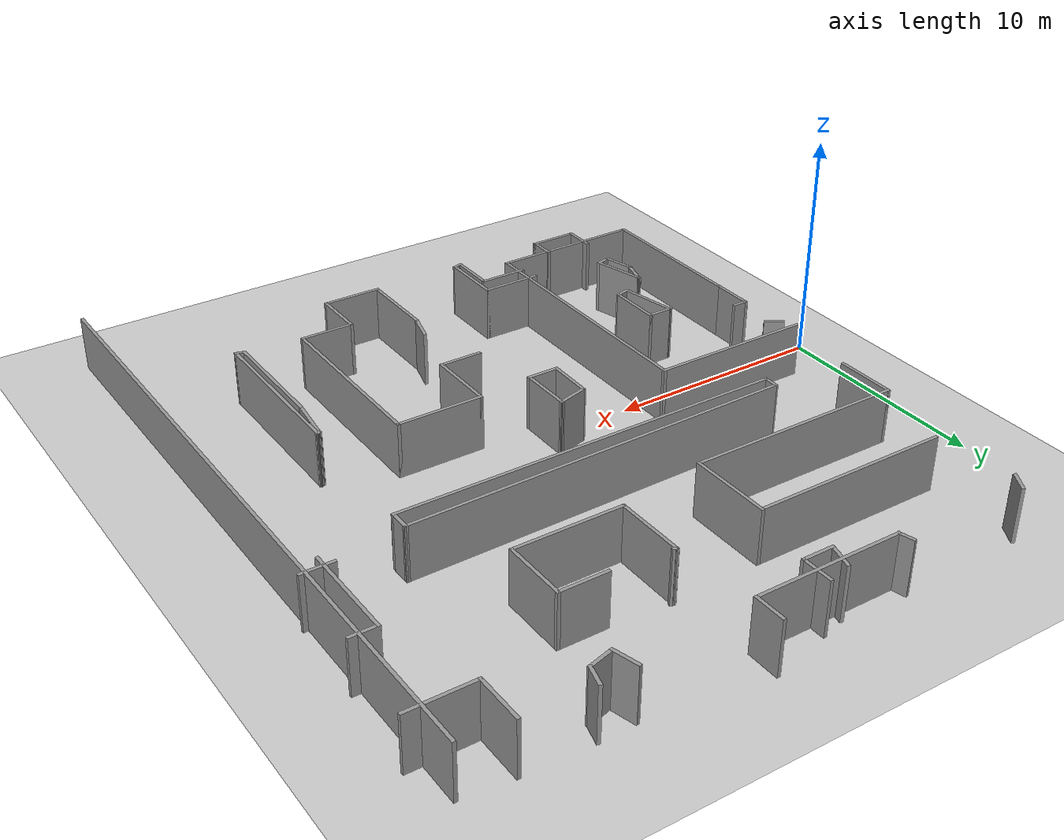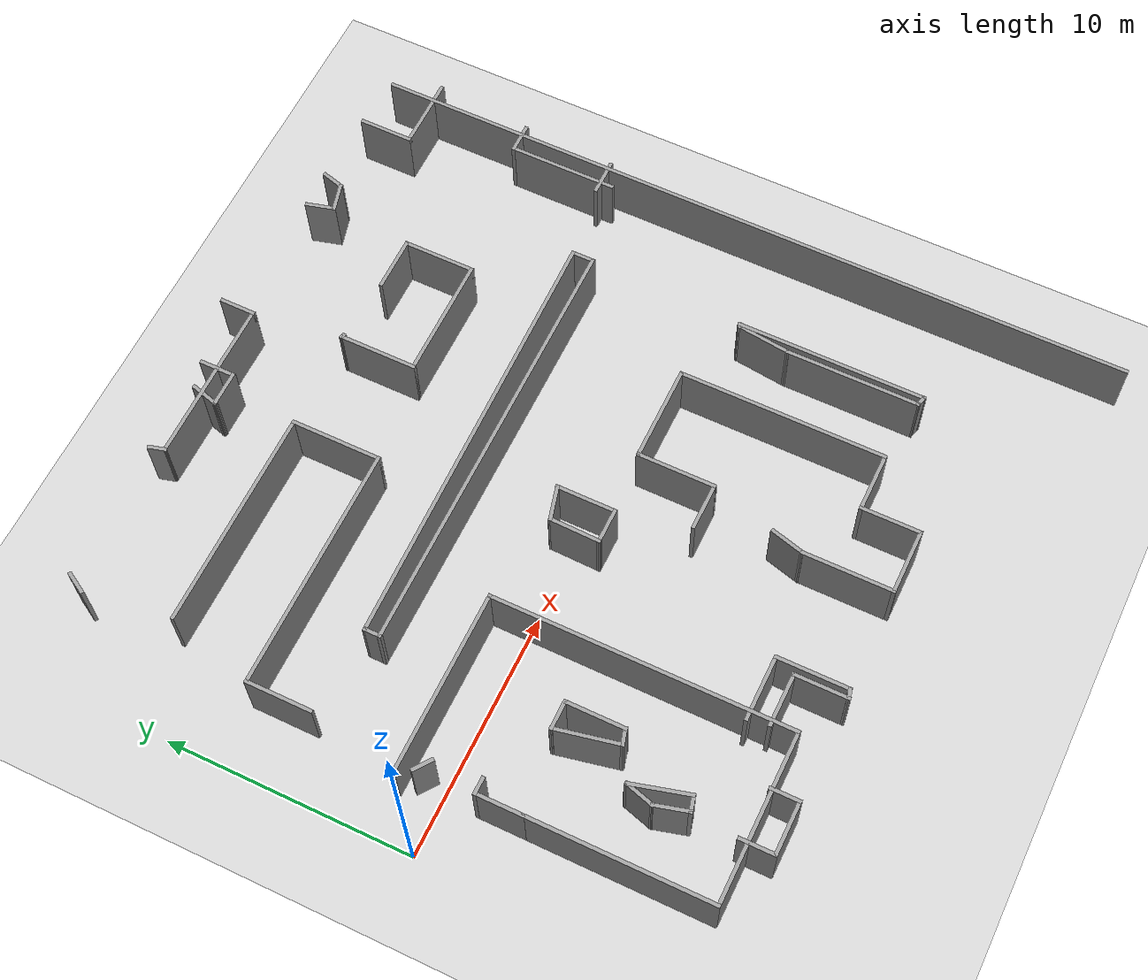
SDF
<sdf version="1.6">
 <world name="default">
  <model name="ground_plane">
   <static>1</static>
   <link name="link">
    <collision name="collision">
     <geometry><plane><normal>0 0 1</normal><size>100 100</size></plane></geometry>
     <surface><friction><ode><mu>100</mu><mu2>50</mu2></ode></friction></surface>
    </collision>
    <visual name="visual">
     <cast_shadows>0</cast_shadows>
     <geometry><plane><normal>0 0 1</normal><size>100 100</size></plane></geometry>
     <material>
      <script><uri>file://media/materials/scripts/gazebo.material</uri><name>Gazebo/Grey</name></script>
     </material>
    </visual>
   </link>
  </model>
  <model name="big_bad_building">
   <pose>1.49466 0.02184 0 0 -0 0</pose>
   <link name="Wall_108">
    <collision name="Wall_108_Collision">
     <geometry><box><size>1.5 0.15 2.5</size></box></geometry>
     <pose>0 0 1.25 0 -0 0</pose>
    </collision>
    <visual name="Wall_108_Visual">
     <pose>0 0 1.25 0 -0 0</pose>
     <geometry><box><size>1.5 0.15 2.5</size></box></geometry>
     <material>
      <script><uri>file://media/materials/scripts/gazebo.material</uri><name>Gazebo/Grey</name></script>
      <ambient>1 1 1 1</ambient>
     </material>
     <meta><layer>0</layer></meta>
    </visual>
    <pose>3.27589 -10.9603 0 0 -0 -1.5708</pose>
   </link>
   <link name="Wall_109">
    <collision name="Wall_109_Collision">
     <geometry><box><size>2.25 0.15 2.5</size></box></geometry>
     <pose>0 0 1.25 0 -0 0</pose>
    </collision>
    <visual name="Wall_109_Visual">
     <pose>0 0 1.25 0 -0 0</pose>
     <geometry><box><size>2.25 0.15 2.5</size></box></geometry>
     <material>
      <script><uri>file://media/materials/scripts/gazebo.material</uri><name>Gazebo/Grey</name></script>
      <ambient>1 1 1 1</ambient>
     </material>
     <meta><layer>0</layer></meta>
    </visual>
    <pose>4.32589 -11.6353 0 0 -0 0</pose>
   </link>
   <link name="Wall_110">
    <collision name="Wall_110_Collision">
     <geometry><box><size>1.25 0.15 2.5</size></box></geometry>
     <pose>0 0 1.25 0 -0 0</pose>
    </collision>
    <visual name="Wall_110_Visual">
     <pose>0 0 1.25 0 -0 0</pose>
     <geometry><box><size>1.25 0.15 2.5</size></box></geometry>
     <material>
      <script><uri>file://media/materials/scripts/gazebo.material</uri><name>Gazebo/Grey</name></script>
      <ambient>1 1 1 1</ambient>
     </material>
     <meta><layer>0</layer></meta>
    </visual>
    <pose>5.37589 -11.0853 0 0 -0 1.5708</pose>
   </link>
   <link name="Wall_112">
    <collision name="Wall_112_Collision">
     <geometry><box><size>2 0.15 2.5</size></box></geometry>
     <pose>0 0 1.25 0 -0 0</pose>
    </collision>
    <visual name="Wall_112_Visual">
     <pose>0 0 1.25 0 -0 0</pose>
     <geometry><box><size>2 0.15 2.5</size></box></geometry>
     <material>
      <script><uri>file://media/materials/scripts/gazebo.material</uri><name>Gazebo/Grey</name></script>
      <ambient>1 1 1 1</ambient>
     </material>
     <meta><layer>0</layer></meta>
    </visual>
    <pose>14.2899 -4.00343 0 0 -0 0</pose>
   </link>
   <link name="Wall_113">
    <collision name="Wall_113_Collision">
     <geometry><box><size>3.25 0.15 2.5</size></box></geometry>
     <pose>0 0 1.25 0 -0 0</pose>
    </collision>
    <visual name="Wall_113_Visual">
     <pose>0 0 1.25 0 -0 0</pose>
     <geometry><box><size>3.25 0.15 2.5</size></box></geometry>
     <material>
      <script><uri>file://media/materials/scripts/gazebo.material</uri><name>Gazebo/Grey</name></script>
      <ambient>1 1 1 1</ambient>
     </material>
     <meta><layer>0</layer></meta>
    </visual>
    <pose>15.2149 -2.45343 0 0 -0 1.5708</pose>
   </link>
   <link name="Wall_114">
    <collision name="Wall_114_Collision">
     <geometry><box><size>4 0.15 2.5</size></box></geometry>
     <pose>0 0 1.25 0 -0 0</pose>
    </collision>
    <visual name="Wall_114_Visual">
     <pose>0 0 1.25 0 -0 0</pose>
     <geometry><box><size>4 0.15 2.5</size></box></geometry>
     <material>
      <script><uri>file://media/materials/scripts/gazebo.material</uri><name>Gazebo/Grey</name></script>
      <ambient>1 1 1 1</ambient>
     </material>
     <meta><layer>0</layer></meta>
    </visual>
    <pose>17.1399 -0.903431 0 0 -0 0</pose>
   </link>
   <link name="Wall_115">
    <collision name="Wall_115_Collision">
     <geometry><box><size>8.5 0.15 2.5</size></box></geometry>
     <pose>0 0 1.25 0 -0 0</pose>
    </collision>
    <visual name="Wall_115_Visual">
     <pose>0 0 1.25 0 -0 0</pose>
     <geometry><box><size>8.5 0.15 2.5</size></box></geometry>
     <material>
      <script><uri>file://media/materials/scripts/gazebo.material</uri><name>Gazebo/Grey</name></script>
      <ambient>1 1 1 1</ambient>
     </material>
     <meta><layer>0</layer></meta>
    </visual>
    <pose>19.0649 -5.07843 0 0 -0 -1.5708</pose>
   </link>
   <link name="Wall_116">
    <collision name="Wall_116_Collision">
     <geometry><box><size>2.5 0.15 2.5</size></box></geometry>
     <pose>0 0 1.25 0 -0 0</pose>
    </collision>
    <visual name="Wall_116_Visual">
     <pose>0 0 1.25 0 -0 0</pose>
     <geometry><box><size>2.5 0.15 2.5</size></box></geometry>
     <material>
      <script><uri>file://media/materials/scripts/gazebo.material</uri><name>Gazebo/Grey</name></script>
      <ambient>1 1 1 1</ambient>
     </material>
     <meta><layer>0</layer></meta>
    </visual>
    <pose>17.8899 -9.25343 0 0 -0 3.14159</pose>
   </link>
   <link name="Wall_117">
    <collision name="Wall_117_Collision">
     <geometry><box><size>2.5 0.15 2.5</size></box></geometry>
     <pose>0 0 1.25 0 -0 0</pose>
    </collision>
    <visual name="Wall_117_Visual">
     <pose>0 0 1.25 0 -0 0</pose>
     <geometry><box><size>2.5 0.15 2.5</size></box></geometry>
     <material>
      <script><uri>file://media/materials/scripts/gazebo.material</uri><name>Gazebo/Grey</name></script>
      <ambient>1 1 1 1</ambient>
     </material>
     <meta><layer>0</layer></meta>
    </visual>
    <pose>16.7149 -10.4284 0 0 -0 -1.5708</pose>
   </link>
   <link name="Wall_118">
    <collision name="Wall_118_Collision">
     <geometry><box><size>2.75 0.15 2.5</size></box></geometry>
     <pose>0 0 1.25 0 -0 0</pose>
    </collision>
    <visual name="Wall_118_Visual">
     <pose>0 0 1.25 0 -0 0</pose>
     <geometry><box><size>2.75 0.15 2.5</size></box></geometry>
     <material>
      <script><uri>file://media/materials/scripts/gazebo.material</uri><name>Gazebo/Grey</name></script>
      <ambient>1 1 1 1</ambient>
     </material>
     <meta><layer>0</layer></meta>
    </visual>
    <pose>15.4149 -11.6034 0 0 -0 3.14159</pose>
   </link>
   <link name="Wall_119">
    <collision name="Wall_119_Collision">
     <geometry><box><size>3.75 0.15 2.5</size></box></geometry>
     <pose>0 0 1.25 0 -0 0</pose>
    </collision>
    <visual name="Wall_119_Visual">
     <pose>0 0 1.25 0 -0 0</pose>
     <geometry><box><size>3.75 0.15 2.5</size></box></geometry>
     <material>
      <script><uri>file://media/materials/scripts/gazebo.material</uri><name>Gazebo/Grey</name></script>
      <ambient>1 1 1 1</ambient>
     </material>
     <meta><layer>0</layer></meta>
    </visual>
    <pose>14.1149 -9.80343 0 0 -0 1.5708</pose>
   </link>
   <link name="Wall_120">
    <collision name="Wall_120_Collision">
     <geometry><box><size>1.5 0.15 2.5</size></box></geometry>
     <pose>0 0 1.25 0 -0 0</pose>
    </collision>
    <visual name="Wall_120_Visual">
     <pose>0 0 1.25 0 -0 0</pose>
     <geometry><box><size>1.5 0.15 2.5</size></box></geometry>
     <material>
      <script><uri>file://media/materials/scripts/gazebo.material</uri><name>Gazebo/Grey</name></script>
      <ambient>1 1 1 1</ambient>
     </material>
     <meta><layer>0</layer></meta>
    </visual>
    <pose>14.2896 -7.35143 0 0 -0 1.309</pose>
   </link>
   <link name="Wall_122">
    <collision name="Wall_122_Collision">
     <geometry><box><size>1.5 0.15 2.5</size></box></geometry>
     <pose>0 0 1.25 0 -0 0</pose>
    </collision>
    <visual name="Wall_122_Visual">
     <pose>0 0 1.25 0 -0 0</pose>
     <geometry><box><size>1.5 0.15 2.5</size></box></geometry>
     <material>
      <script><uri>file://media/materials/scripts/gazebo.material</uri><name>Gazebo/Grey</name></script>
      <ambient>1 1 1 1</ambient>
     </material>
     <meta><layer>0</layer></meta>
    </visual>
    <pose>12.0499 1.05715 0 0 -0 0.261799</pose>
   </link>
   <link name="Wall_123">
    <collision name="Wall_123_Collision">
     <geometry><box><size>2.5 0.15 2.5</size></box></geometry>
     <pose>0 0 1.25 0 -0 0</pose>
    </collision>
    <visual name="Wall_123_Visual">
     <pose>0 0 1.25 0 -0 0</pose>
     <geometry><box><size>2.5 0.15 2.5</size></box></geometry>
     <material>
      <script><uri>file://media/materials/scripts/gazebo.material</uri><name>Gazebo/Grey</name></script>
      <ambient>1 1 1 1</ambient>
     </material>
     <meta><layer>0</layer></meta>
    </visual>
    <pose>12.7019 0.056852 0 0 -0 -1.5708</pose>
   </link>
   <link name="Wall_124">
    <collision name="Wall_124_Collision">
     <geometry><box><size>1.5 0.15 2.5</size></box></geometry>
     <pose>0 0 1.25 0 -0 0</pose>
    </collision>
    <visual name="Wall_124_Visual">
     <pose>0 0 1.25 0 -0 0</pose>
     <geometry><box><size>1.5 0.15 2.5</size></box></geometry>
     <material>
      <script><uri>file://media/materials/scripts/gazebo.material</uri><name>Gazebo/Grey</name></script>
      <ambient>1 1 1 1</ambient>
     </material>
     <meta><layer>0</layer></meta>
    </visual>
    <pose>12.0269 -1.11815 0 0 -0 3.14159</pose>
   </link>
   <link name="Wall_125">
    <collision name="Wall_125_Collision">
     <geometry><box><size>2.15112 0.15 2.5</size></box></geometry>
     <pose>0 0 1.25 0 -0 0</pose>
    </collision>
    <visual name="Wall_125_Visual">
     <pose>0 0 1.25 0 -0 0</pose>
     <geometry><box><size>2.15112 0.15 2.5</size></box></geometry>
     <material>
      <script><uri>file://media/materials/scripts/gazebo.material</uri><name>Gazebo/Grey</name></script>
      <ambient>1 1 1 1</ambient>
     </material>
     <meta><layer>0</layer></meta>
    </visual>
    <pose>11.3749 -0.117851 0 0 -0 1.54781</pose>
   </link>
   <link name="Wall_127">
    <collision name="Wall_127_Collision">
     <geometry><box><size>5.5 0.15 2.5</size></box></geometry>
     <pose>0 0 1.25 0 -0 0</pose>
    </collision>
    <visual name="Wall_127_Visual">
     <pose>0 0 1.25 0 -0 0</pose>
     <geometry><box><size>5.5 0.15 2.5</size></box></geometry>
     <material>
      <script><uri>file://media/materials/scripts/gazebo.material</uri><name>Gazebo/Grey</name></script>
      <ambient>1 1 1 1</ambient>
     </material>
     <meta><layer>0</layer></meta>
    </visual>
    <pose>21.6773 -6.86879 0 0 -0 -1.5708</pose>
   </link>
   <link name="Wall_128">
    <collision name="Wall_128_Collision">
     <geometry><box><size>0.5 0.15 2.5</size></box></geometry>
     <pose>0 0 1.25 0 -0 0</pose>
    </collision>
    <visual name="Wall_128_Visual">
     <pose>0 0 1.25 0 -0 0</pose>
     <geometry><box><size>0.5 0.15 2.5</size></box></geometry>
     <material>
      <script><uri>file://media/materials/scripts/gazebo.material</uri><name>Gazebo/Grey</name></script>
      <ambient>1 1 1 1</ambient>
     </material>
     <meta><layer>0</layer></meta>
    </visual>
    <pose>21.8463 -9.58908 0 0 -0 -0.261799</pose>
   </link>
   <link name="Wall_129">
    <collision name="Wall_129_Collision">
     <geometry><box><size>7.75 0.15 2.5</size></box></geometry>
     <pose>0 0 1.25 0 -0 0</pose>
    </collision>
    <visual name="Wall_129_Visual">
     <pose>0 0 1.25 0 -0 0</pose>
     <geometry><box><size>7.75 0.15 2.5</size></box></geometry>
     <material>
      <script><uri>file://media/materials/scripts/gazebo.material</uri><name>Gazebo/Grey</name></script>
      <ambient>1 1 1 1</ambient>
     </material>
     <meta><layer>0</layer></meta>
    </visual>
    <pose>22.0153 -5.83438 0 0 -0 1.5708</pose>
   </link>
   <link name="Wall_130">
    <collision name="Wall_130_Collision">
     <geometry><box><size>0.25 0.15 2.5</size></box></geometry>
     <pose>0 0 1.25 0 -0 0</pose>
    </collision>
    <visual name="Wall_130_Visual">
     <pose>0 0 1.25 0 -0 0</pose>
     <geometry><box><size>0.25 0.15 2.5</size></box></geometry>
     <material>
      <script><uri>file://media/materials/scripts/gazebo.material</uri><name>Gazebo/Grey</name></script>
      <ambient>1 1 1 1</ambient>
     </material>
     <meta><layer>0</layer></meta>
    </visual>
    <pose>21.972 -2.05938 0 0 -0 -2.61799</pose>
   </link>
   <link name="Wall_131">
    <collision name="Wall_131_Collision">
     <geometry><box><size>2.27435 0.15 2.5</size></box></geometry>
     <pose>0 0 1.25 0 -0 0</pose>
    </collision>
    <visual name="Wall_131_Visual">
     <pose>0 0 1.25 0 -0 0</pose>
     <geometry><box><size>2.27435 0.15 2.5</size></box></geometry>
     <material>
      <script><uri>file://media/materials/scripts/gazebo.material</uri><name>Gazebo/Grey</name></script>
      <ambient>1 1 1 1</ambient>
     </material>
     <meta><layer>0</layer></meta>
    </visual>
    <pose>21.803 -3.13908 0 0 -0 -1.68945</pose>
   </link>
   <link name="Wall_133">
    <collision name="Wall_133_Collision">
     <geometry><box><size>2.75 0.15 2.5</size></box></geometry>
     <pose>0 0 1.25 0 -0 0</pose>
    </collision>
    <visual name="Wall_133_Visual">
     <pose>0 0 1.25 0 -0 0</pose>
     <geometry><box><size>2.75 0.15 2.5</size></box></geometry>
     <material>
      <script><uri>file://media/materials/scripts/gazebo.material</uri><name>Gazebo/Grey</name></script>
      <ambient>1 1 1 1</ambient>
     </material>
     <meta><layer>0</layer></meta>
    </visual>
    <pose>8.63688 -8.7624 0 0 -0 0</pose>
   </link>
   <link name="Wall_134">
    <collision name="Wall_134_Collision">
     <geometry><box><size>3 0.15 2.5</size></box></geometry>
     <pose>0 0 1.25 0 -0 0</pose>
    </collision>
    <visual name="Wall_134_Visual">
     <pose>0 0 1.25 0 -0 0</pose>
     <geometry><box><size>3 0.15 2.5</size></box></geometry>
     <material>
      <script><uri>file://media/materials/scripts/gazebo.material</uri><name>Gazebo/Grey</name></script>
      <ambient>1 1 1 1</ambient>
     </material>
     <meta><layer>0</layer></meta>
    </visual>
    <pose>9.93688 -10.1874 0 0 -0 -1.5708</pose>
   </link>
   <link name="Wall_135">
    <collision name="Wall_135_Collision">
     <geometry><box><size>0.5 0.15 2.5</size></box></geometry>
     <pose>0 0 1.25 0 -0 0</pose>
    </collision>
    <visual name="Wall_135_Visual">
     <pose>0 0 1.25 0 -0 0</pose>
     <geometry><box><size>0.5 0.15 2.5</size></box></geometry>
     <material>
      <script><uri>file://media/materials/scripts/gazebo.material</uri><name>Gazebo/Grey</name></script>
      <ambient>1 1 1 1</ambient>
     </material>
     <meta><layer>0</layer></meta>
    </visual>
    <pose>9.76784 -11.6577 0 0 -0 -2.87979</pose>
   </link>
   <link name="Wall_136">
    <collision name="Wall_136_Collision">
     <geometry><box><size>2.25 0.15 2.5</size></box></geometry>
     <pose>0 0 1.25 0 -0 0</pose>
    </collision>
    <visual name="Wall_136_Visual">
     <pose>0 0 1.25 0 -0 0</pose>
     <geometry><box><size>2.25 0.15 2.5</size></box></geometry>
     <material>
      <script><uri>file://media/materials/scripts/gazebo.material</uri><name>Gazebo/Grey</name></script>
      <ambient>1 1 1 1</ambient>
     </material>
     <meta><layer>0</layer></meta>
    </visual>
    <pose>9.59881 -10.653 0 0 -0 1.5708</pose>
   </link>
   <link name="Wall_137">
    <collision name="Wall_137_Collision">
     <geometry><box><size>2.25 0.15 2.5</size></box></geometry>
     <pose>0 0 1.25 0 -0 0</pose>
    </collision>
    <visual name="Wall_137_Visual">
     <pose>0 0 1.25 0 -0 0</pose>
     <geometry><box><size>2.25 0.15 2.5</size></box></geometry>
     <material>
      <script><uri>file://media/materials/scripts/gazebo.material</uri><name>Gazebo/Grey</name></script>
      <ambient>1 1 1 1</ambient>
     </material>
     <meta><layer>0</layer></meta>
    </visual>
    <pose>8.54881 -9.60299 0 0 -0 3.14159</pose>
   </link>
   <link name="Wall_150">
    <collision name="Wall_150_Collision">
     <geometry><box><size>1 0.15 2.5</size></box></geometry>
     <pose>0 0 1.25 0 -0 0</pose>
    </collision>
    <visual name="Wall_150_Visual">
     <pose>0 0 1.25 0 -0 0</pose>
     <geometry><box><size>1 0.15 2.5</size></box></geometry>
     <material>
      <script><uri>file://media/materials/scripts/gazebo.material</uri><name>Gazebo/Grey</name></script>
      <ambient>1 1 1 1</ambient>
     </material>
     <meta><layer>0</layer></meta>
    </visual>
    <pose>1.7247 15.2513 0 0 -0 1.0472</pose>
   </link>
   <link name="Wall_152">
    <collision name="Wall_152_Collision">
     <geometry><box><size>0.75 0.15 2.5</size></box></geometry>
     <pose>0 0 1.25 0 -0 0</pose>
    </collision>
    <visual name="Wall_152_Visual">
     <pose>0 0 1.25 0 -0 0</pose>
     <geometry><box><size>0.75 0.15 2.5</size></box></geometry>
     <material>
      <script><uri>file://media/materials/scripts/gazebo.material</uri><name>Gazebo/Grey</name></script>
      <ambient>1 1 1 1</ambient>
     </material>
     <meta><layer>0</layer></meta>
    </visual>
    <pose>7.73116 15.4434 0 0 -0 -1.309</pose>
   </link>
   <link name="Wall_153">
    <collision name="Wall_153_Collision">
     <geometry><box><size>6.75 0.15 2.5</size></box></geometry>
     <pose>0 0 1.25 0 -0 0</pose>
    </collision>
    <visual name="Wall_153_Visual">
     <pose>0 0 1.25 0 -0 0</pose>
     <geometry><box><size>6.75 0.15 2.5</size></box></geometry>
     <material>
      <script><uri>file://media/materials/scripts/gazebo.material</uri><name>Gazebo/Grey</name></script>
      <ambient>1 1 1 1</ambient>
     </material>
     <meta><layer>0</layer></meta>
    </visual>
    <pose>11.1088 15.1537 0 0 -0 0</pose>
   </link>
   <link name="Wall_154">
    <collision name="Wall_154_Collision">
     <geometry><box><size>1.5 0.15 2.5</size></box></geometry>
     <pose>0 0 1.25 0 -0 0</pose>
    </collision>
    <visual name="Wall_154_Visual">
     <pose>0 0 1.25 0 -0 0</pose>
     <geometry><box><size>1.5 0.15 2.5</size></box></geometry>
     <material>
      <script><uri>file://media/materials/scripts/gazebo.material</uri><name>Gazebo/Grey</name></script>
      <ambient>1 1 1 1</ambient>
     </material>
     <meta><layer>0</layer></meta>
    </visual>
    <pose>14.4088 15.8287 0 0 -0 1.5708</pose>
   </link>
   <link name="Wall_156">
    <collision name="Wall_156_Collision">
     <geometry><box><size>1.5 0.15 2.5</size></box></geometry>
     <pose>0 0 1.25 0 -0 0</pose>
    </collision>
    <visual name="Wall_156_Visual">
     <pose>0 0 1.25 0 -0 0</pose>
     <geometry><box><size>1.5 0.15 2.5</size></box></geometry>
     <material>
      <script><uri>file://media/materials/scripts/gazebo.material</uri><name>Gazebo/Grey</name></script>
      <ambient>1 1 1 1</ambient>
     </material>
     <meta><layer>0</layer></meta>
    </visual>
    <pose>11.6815 15.1421 0 0 -0 -1.5708</pose>
   </link>
   <link name="Wall_157">
    <collision name="Wall_157_Collision">
     <geometry><box><size>1.5 0.15 2.5</size></box></geometry>
     <pose>0 0 1.25 0 -0 0</pose>
    </collision>
    <visual name="Wall_157_Visual">
     <pose>0 0 1.25 0 -0 0</pose>
     <geometry><box><size>1.5 0.15 2.5</size></box></geometry>
     <material>
      <script><uri>file://media/materials/scripts/gazebo.material</uri><name>Gazebo/Grey</name></script>
      <ambient>1 1 1 1</ambient>
     </material>
     <meta><layer>0</layer></meta>
    </visual>
    <pose>11.0065 14.4671 0 0 -0 3.14159</pose>
   </link>
   <link name="Wall_158">
    <collision name="Wall_158_Collision">
     <geometry><box><size>1.25 0.15 2.5</size></box></geometry>
     <pose>0 0 1.25 0 -0 0</pose>
    </collision>
    <visual name="Wall_158_Visual">
     <pose>0 0 1.25 0 -0 0</pose>
     <geometry><box><size>1.25 0.15 2.5</size></box></geometry>
     <material>
      <script><uri>file://media/materials/scripts/gazebo.material</uri><name>Gazebo/Grey</name></script>
      <ambient>1 1 1 1</ambient>
     </material>
     <meta><layer>0</layer></meta>
    </visual>
    <pose>10.4739 14.9984 0 0 -0 1.309</pose>
   </link>
   <link name="Wall_160">
    <collision name="Wall_160_Collision">
     <geometry><box><size>2.25 0.15 2.5</size></box></geometry>
     <pose>0 0 1.25 0 -0 0</pose>
    </collision>
    <visual name="Wall_160_Visual">
     <pose>0 0 1.25 0 -0 0</pose>
     <geometry><box><size>2.25 0.15 2.5</size></box></geometry>
     <material>
      <script><uri>file://media/materials/scripts/gazebo.material</uri><name>Gazebo/Grey</name></script>
      <ambient>1 1 1 1</ambient>
     </material>
     <meta><layer>0</layer></meta>
    </visual>
    <pose>24.269 14.5993 0 0 -0 -1.5708</pose>
   </link>
   <link name="Wall_161">
    <collision name="Wall_161_Collision">
     <geometry><box><size>3 0.15 2.5</size></box></geometry>
     <pose>0 0 1.25 0 -0 0</pose>
    </collision>
    <visual name="Wall_161_Visual">
     <pose>0 0 1.25 0 -0 0</pose>
     <geometry><box><size>3 0.15 2.5</size></box></geometry>
     <material>
      <script><uri>file://media/materials/scripts/gazebo.material</uri><name>Gazebo/Grey</name></script>
      <ambient>1 1 1 1</ambient>
     </material>
     <meta><layer>0</layer></meta>
    </visual>
    <pose>25.694 13.5493 0 0 -0 0</pose>
   </link>
   <link name="Wall_163">
    <collision name="Wall_163_Collision">
     <geometry><box><size>1.25 0.15 2.5</size></box></geometry>
     <pose>0 0 1.25 0 -0 0</pose>
    </collision>
    <visual name="Wall_163_Visual">
     <pose>0 0 1.25 0 -0 0</pose>
     <geometry><box><size>1.25 0.15 2.5</size></box></geometry>
     <material>
      <script><uri>file://media/materials/scripts/gazebo.material</uri><name>Gazebo/Grey</name></script>
      <ambient>1 1 1 1</ambient>
     </material>
     <meta><layer>0</layer></meta>
    </visual>
    <pose>19.8798 15.202 0 0 -0 -1.309</pose>
   </link>
   <link name="Wall_164">
    <collision name="Wall_164_Collision">
     <geometry><box><size>1.25 0.15 2.5</size></box></geometry>
     <pose>0 0 1.25 0 -0 0</pose>
    </collision>
    <visual name="Wall_164_Visual">
     <pose>0 0 1.25 0 -0 0</pose>
     <geometry><box><size>1.25 0.15 2.5</size></box></geometry>
     <material>
      <script><uri>file://media/materials/scripts/gazebo.material</uri><name>Gazebo/Grey</name></script>
      <ambient>1 1 1 1</ambient>
     </material>
     <meta><layer>0</layer></meta>
    </visual>
    <pose>20.5535 14.813 0 0 -0 0.261799</pose>
   </link>
   <link name="Wall_165">
    <collision name="Wall_165_Collision">
     <geometry><box><size>1 0.15 2.5</size></box></geometry>
     <pose>0 0 1.25 0 -0 0</pose>
    </collision>
    <visual name="Wall_165_Visual">
     <pose>0 0 1.25 0 -0 0</pose>
     <geometry><box><size>1 0.15 2.5</size></box></geometry>
     <material>
      <script><uri>file://media/materials/scripts/gazebo.material</uri><name>Gazebo/Grey</name></script>
      <ambient>1 1 1 1</ambient>
     </material>
     <meta><layer>0</layer></meta>
    </visual>
    <pose>21.1947 15.3659 0 0 -0 1.309</pose>
   </link>
   <link name="Wall_167">
    <collision name="Wall_167_Collision">
     <geometry><box><size>1.25 0.15 2.5</size></box></geometry>
     <pose>0 0 1.25 0 -0 0</pose>
    </collision>
    <visual name="Wall_167_Visual">
     <pose>0 0 1.25 0 -0 0</pose>
     <geometry><box><size>1.25 0.15 2.5</size></box></geometry>
     <material>
      <script><uri>file://media/materials/scripts/gazebo.material</uri><name>Gazebo/Grey</name></script>
      <ambient>1 1 1 1</ambient>
     </material>
     <meta><layer>0</layer></meta>
    </visual>
    <pose>26.2365 9.52339 0 0 -0 3.14159</pose>
   </link>
   <link name="Wall_168">
    <collision name="Wall_168_Collision">
     <geometry><box><size>4.5 0.15 2.5</size></box></geometry>
     <pose>0 0 1.25 0 -0 0</pose>
    </collision>
    <visual name="Wall_168_Visual">
     <pose>0 0 1.25 0 -0 0</pose>
     <geometry><box><size>4.5 0.15 2.5</size></box></geometry>
     <material>
      <script><uri>file://media/materials/scripts/gazebo.material</uri><name>Gazebo/Grey</name></script>
      <ambient>1 1 1 1</ambient>
     </material>
     <meta><layer>0</layer></meta>
    </visual>
    <pose>25.6865 7.34839 0 0 -0 -1.5708</pose>
   </link>
   <link name="Wall_170">
    <collision name="Wall_170_Collision">
     <geometry><box><size>1.5 0.15 2.5</size></box></geometry>
     <pose>0 0 1.25 0 -0 0</pose>
    </collision>
    <visual name="Wall_170_Visual">
     <pose>0 0 1.25 0 -0 0</pose>
     <geometry><box><size>1.5 0.15 2.5</size></box></geometry>
     <material>
      <script><uri>file://media/materials/scripts/gazebo.material</uri><name>Gazebo/Grey</name></script>
      <ambient>1 1 1 1</ambient>
     </material>
     <meta><layer>0</layer></meta>
    </visual>
    <pose>25.951 5.66323 0 0 -0 0</pose>
   </link>
   <link name="Wall_4">
    <collision name="Wall_4_Collision">
     <geometry><box><size>31.75 0.15 2.5</size></box></geometry>
     <pose>0 0 1.25 0 -0 0</pose>
    </collision>
    <visual name="Wall_4_Visual">
     <pose>0 0 1.25 0 -0 0</pose>
     <geometry><box><size>31.75 0.15 2.5</size></box></geometry>
     <material>
      <script><uri>file://media/materials/scripts/gazebo.material</uri><name>Gazebo/Grey</name></script>
      <ambient>1 1 1 1</ambient>
     </material>
     <meta><layer>0</layer></meta>
    </visual>
    <pose>26.4132 -0.379041 0 0 -0 -1.5708</pose>
   </link>
   <link name="Wall_46">
    <collision name="Wall_46_Collision">
     <geometry><box><size>2.75 0.15 2.5</size></box></geometry>
     <pose>0 0 1.25 0 -0 0</pose>
    </collision>
    <visual name="Wall_46_Visual">
     <pose>0 0 1.25 0 -0 0</pose>
     <geometry><box><size>2.75 0.15 2.5</size></box></geometry>
     <material>
      <script><uri>file://media/materials/scripts/gazebo.material</uri><name>Gazebo/Grey</name></script>
      <ambient>1 1 1 1</ambient>
     </material>
     <meta><layer>0</layer></meta>
    </visual>
    <pose>1.04966 6.47729 0 0 -0 1.5708</pose>
   </link>
   <link name="Wall_47">
    <collision name="Wall_47_Collision">
     <geometry><box><size>10 0.15 2.5</size></box></geometry>
     <pose>0 0 1.25 0 -0 0</pose>
    </collision>
    <visual name="Wall_47_Visual">
     <pose>0 0 1.25 0 -0 0</pose>
     <geometry><box><size>10 0.15 2.5</size></box></geometry>
     <material>
      <script><uri>file://media/materials/scripts/gazebo.material</uri><name>Gazebo/Grey</name></script>
      <ambient>1 1 1 1</ambient>
     </material>
     <meta><layer>0</layer></meta>
    </visual>
    <pose>5.97466 7.77729 0 0 -0 0</pose>
   </link>
   <link name="Wall_48">
    <collision name="Wall_48_Collision">
     <geometry><box><size>3.75 0.15 2.5</size></box></geometry>
     <pose>0 0 1.25 0 -0 0</pose>
    </collision>
    <visual name="Wall_48_Visual">
     <pose>0 0 1.25 0 -0 0</pose>
     <geometry><box><size>3.75 0.15 2.5</size></box></geometry>
     <material>
      <script><uri>file://media/materials/scripts/gazebo.material</uri><name>Gazebo/Grey</name></script>
      <ambient>1 1 1 1</ambient>
     </material>
     <meta><layer>0</layer></meta>
    </visual>
    <pose>10.8997 9.57729 0 0 -0 1.5708</pose>
   </link>
   <link name="Wall_49">
    <collision name="Wall_49_Collision">
     <geometry><box><size>9 0.15 2.5</size></box></geometry>
     <pose>0 0 1.25 0 -0 0</pose>
    </collision>
    <visual name="Wall_49_Visual">
     <pose>0 0 1.25 0 -0 0</pose>
     <geometry><box><size>9 0.15 2.5</size></box></geometry>
     <material>
      <script><uri>file://media/materials/scripts/gazebo.material</uri><name>Gazebo/Grey</name></script>
      <ambient>1 1 1 1</ambient>
     </material>
     <meta><layer>0</layer></meta>
    </visual>
    <pose>6.47466 11.3773 0 0 -0 3.14159</pose>
   </link>
   <link name="Wall_54">
    <collision name="Wall_54_Collision">
     <geometry><box><size>0.896517 0.15 2.5</size></box></geometry>
     <pose>0 0 1.25 0 -0 0</pose>
    </collision>
    <visual name="Wall_54_Visual">
     <pose>0 0 1.25 0 -0 0</pose>
     <geometry><box><size>0.896517 0.15 2.5</size></box></geometry>
     <material>
      <script><uri>file://media/materials/scripts/gazebo.material</uri><name>Gazebo/Grey</name></script>
      <ambient>1 1 1 1</ambient>
     </material>
     <meta><layer>0</layer></meta>
    </visual>
    <pose>0.974323 0.713949 0 0 -0 -0.637254</pose>
   </link>
   <link name="Wall_56">
    <collision name="Wall_56_Collision">
     <geometry><box><size>0.75 0.15 2.5</size></box></geometry>
     <pose>0 0 1.25 0 -0 0</pose>
    </collision>
    <visual name="Wall_56_Visual">
     <pose>0 0 1.25 0 -0 0</pose>
     <geometry><box><size>0.75 0.15 2.5</size></box></geometry>
     <material>
      <script><uri>file://media/materials/scripts/gazebo.material</uri><name>Gazebo/Grey</name></script>
      <ambient>1 1 1 1</ambient>
     </material>
     <meta><layer>0</layer></meta>
    </visual>
    <pose>1.13576 -1.40186 0 0 -0 3.14159</pose>
   </link>
   <link name="Wall_57">
    <collision name="Wall_57_Collision">
     <geometry><box><size>2 0.15 2.5</size></box></geometry>
     <pose>0 0 1.25 0 -0 0</pose>
    </collision>
    <visual name="Wall_57_Visual">
     <pose>0 0 1.25 0 -0 0</pose>
     <geometry><box><size>2 0.15 2.5</size></box></geometry>
     <material>
      <script><uri>file://media/materials/scripts/gazebo.material</uri><name>Gazebo/Grey</name></script>
      <ambient>1 1 1 1</ambient>
     </material>
     <meta><layer>0</layer></meta>
    </visual>
    <pose>0.835759 -2.32686 0 0 -0 -1.5708</pose>
   </link>
   <link name="Wall_58">
    <collision name="Wall_58_Collision">
     <geometry><box><size>7.5 0.15 2.5</size></box></geometry>
     <pose>0 0 1.25 0 -0 0</pose>
    </collision>
    <visual name="Wall_58_Visual">
     <pose>0 0 1.25 0 -0 0</pose>
     <geometry><box><size>7.5 0.15 2.5</size></box></geometry>
     <material>
      <script><uri>file://media/materials/scripts/gazebo.material</uri><name>Gazebo/Grey</name></script>
      <ambient>1 1 1 1</ambient>
     </material>
     <meta><layer>0</layer></meta>
    </visual>
    <pose>0.835759 -6.92686 0 0 -0 -1.5708</pose>
   </link>
   <link name="Wall_59">
    <collision name="Wall_59_Collision">
     <geometry><box><size>7 0.15 2.5</size></box></geometry>
     <pose>0 0 1.25 0 -0 0</pose>
    </collision>
    <visual name="Wall_59_Visual">
     <pose>0 0 1.25 0 -0 0</pose>
     <geometry><box><size>7 0.15 2.5</size></box></geometry>
     <material>
      <script><uri>file://media/materials/scripts/gazebo.material</uri><name>Gazebo/Grey</name></script>
      <ambient>1 1 1 1</ambient>
     </material>
     <meta><layer>0</layer></meta>
    </visual>
    <pose>4.26076 -10.6019 0 0 -0 0</pose>
   </link>
   <link name="Wall_60">
    <collision name="Wall_60_Collision">
     <geometry><box><size>12.25 0.15 2.5</size></box></geometry>
     <pose>0 0 1.25 0 -0 0</pose>
    </collision>
    <visual name="Wall_60_Visual">
     <pose>0 0 1.25 0 -0 0</pose>
     <geometry><box><size>12.25 0.15 2.5</size></box></geometry>
     <material>
      <script><uri>file://media/materials/scripts/gazebo.material</uri><name>Gazebo/Grey</name></script>
      <ambient>1 1 1 1</ambient>
     </material>
     <meta><layer>0</layer></meta>
    </visual>
    <pose>7.68576 -4.55186 0 0 -0 1.5708</pose>
   </link>
   <link name="Wall_61">
    <collision name="Wall_61_Collision">
     <geometry><box><size>7.5 0.15 2.5</size></box></geometry>
     <pose>0 0 1.25 0 -0 0</pose>
    </collision>
    <visual name="Wall_61_Visual">
     <pose>0 0 1.25 0 -0 0</pose>
     <geometry><box><size>7.5 0.15 2.5</size></box></geometry>
     <material>
      <script><uri>file://media/materials/scripts/gazebo.material</uri><name>Gazebo/Grey</name></script>
      <ambient>1 1 1 1</ambient>
     </material>
     <meta><layer>0</layer></meta>
    </visual>
    <pose>4.01076 1.49814 0 0 -0 3.14159</pose>
   </link>
   <link name="Wall_78">
    <collision name="Wall_78_Collision">
     <geometry><box><size>1.25 0.15 2.5</size></box></geometry>
     <pose>0 0 1.25 0 -0 0</pose>
    </collision>
    <visual name="Wall_78_Visual">
     <pose>0 0 1.25 0 -0 0</pose>
     <geometry><box><size>1.25 0.15 2.5</size></box></geometry>
     <material>
      <script><uri>file://media/materials/scripts/gazebo.material</uri><name>Gazebo/Grey</name></script>
      <ambient>1 1 1 1</ambient>
     </material>
     <meta><layer>0</layer></meta>
    </visual>
    <pose>4.65078 -2.73437 0 0 -0 0</pose>
   </link>
   <link name="Wall_79">
    <collision name="Wall_79_Collision">
     <geometry><box><size>2.5 0.15 2.5</size></box></geometry>
     <pose>0 0 1.25 0 -0 0</pose>
    </collision>
    <visual name="Wall_79_Visual">
     <pose>0 0 1.25 0 -0 0</pose>
     <geometry><box><size>2.5 0.15 2.5</size></box></geometry>
     <material>
      <script><uri>file://media/materials/scripts/gazebo.material</uri><name>Gazebo/Grey</name></script>
      <ambient>1 1 1 1</ambient>
     </material>
     <meta><layer>0</layer></meta>
    </visual>
    <pose>5.20078 -3.90937 0 0 -0 -1.5708</pose>
   </link>
   <link name="Wall_80">
    <collision name="Wall_80_Collision">
     <geometry><box><size>0.75 0.15 2.5</size></box></geometry>
     <pose>0 0 1.25 0 -0 0</pose>
    </collision>
    <visual name="Wall_80_Visual">
     <pose>0 0 1.25 0 -0 0</pose>
     <geometry><box><size>0.75 0.15 2.5</size></box></geometry>
     <material>
      <script><uri>file://media/materials/scripts/gazebo.material</uri><name>Gazebo/Grey</name></script>
      <ambient>1 1 1 1</ambient>
     </material>
     <meta><layer>0</layer></meta>
    </visual>
    <pose>4.91101 -5.16202 0 0 -0 -2.87979</pose>
   </link>
   <link name="Wall_81">
    <collision name="Wall_81_Collision">
     <geometry><box><size>2.70878 0.15 2.5</size></box></geometry>
     <pose>0 0 1.25 0 -0 0</pose>
    </collision>
    <visual name="Wall_81_Visual">
     <pose>0 0 1.25 0 -0 0</pose>
     <geometry><box><size>2.70878 0.15 2.5</size></box></geometry>
     <material>
      <script><uri>file://media/materials/scripts/gazebo.material</uri><name>Gazebo/Grey</name></script>
      <ambient>1 1 1 1</ambient>
     </material>
     <meta><layer>0</layer></meta>
    </visual>
    <pose>4.361 -3.98702 0 0 -0 1.77562</pose>
   </link>
   <link name="Wall_83">
    <collision name="Wall_83_Collision">
     <geometry><box><size>2.5 0.15 2.5</size></box></geometry>
     <pose>0 0 1.25 0 -0 0</pose>
    </collision>
    <visual name="Wall_83_Visual">
     <pose>0 0 1.25 0 -0 0</pose>
     <geometry><box><size>2.5 0.15 2.5</size></box></geometry>
     <material>
      <script><uri>file://media/materials/scripts/gazebo.material</uri><name>Gazebo/Grey</name></script>
      <ambient>1 1 1 1</ambient>
     </material>
     <meta><layer>0</layer></meta>
    </visual>
    <pose>3.70691 -7.10543 0 0 -0 -1.309</pose>
   </link>
   <link name="Wall_84">
    <collision name="Wall_84_Collision">
     <geometry><box><size>0.75 0.15 2.5</size></box></geometry>
     <pose>0 0 1.25 0 -0 0</pose>
    </collision>
    <visual name="Wall_84_Visual">
     <pose>0 0 1.25 0 -0 0</pose>
     <geometry><box><size>0.75 0.15 2.5</size></box></geometry>
     <material>
      <script><uri>file://media/materials/scripts/gazebo.material</uri><name>Gazebo/Grey</name></script>
      <ambient>1 1 1 1</ambient>
     </material>
     <meta><layer>0</layer></meta>
    </visual>
    <pose>3.72125 -8.31804 0 0 -0 -2.87979</pose>
   </link>
   <link name="Wall_85">
    <collision name="Wall_85_Collision">
     <geometry><box><size>1.5 0.15 2.5</size></box></geometry>
     <pose>0 0 1.25 0 -0 0</pose>
    </collision>
    <visual name="Wall_85_Visual">
     <pose>0 0 1.25 0 -0 0</pose>
     <geometry><box><size>1.5 0.15 2.5</size></box></geometry>
     <material>
      <script><uri>file://media/materials/scripts/gazebo.material</uri><name>Gazebo/Grey</name></script>
      <ambient>1 1 1 1</ambient>
     </material>
     <meta><layer>0</layer></meta>
    </visual>
    <pose>3.25677 -7.74369 0 0 -0 1.8326</pose>
   </link>
   <link name="Wall_86">
    <collision name="Wall_86_Collision">
     <geometry><box><size>1.31619 0.15 2.5</size></box></geometry>
     <pose>0 0 1.25 0 -0 0</pose>
    </collision>
    <visual name="Wall_86_Visual">
     <pose>0 0 1.25 0 -0 0</pose>
     <geometry><box><size>1.31619 0.15 2.5</size></box></geometry>
     <material>
      <script><uri>file://media/materials/scripts/gazebo.material</uri><name>Gazebo/Grey</name></script>
      <ambient>1 1 1 1</ambient>
     </material>
     <meta><layer>0</layer></meta>
    </visual>
    <pose>3.24243 -6.53108 0 0 -0 1.29218</pose>
   </link>
   <link name="Wall_88">
    <collision name="Wall_88_Collision">
     <geometry><box><size>0.75 0.15 2.5</size></box></geometry>
     <pose>0 0 1.25 0 -0 0</pose>
    </collision>
    <visual name="Wall_88_Visual">
     <pose>0 0 1.25 0 -0 0</pose>
     <geometry><box><size>0.75 0.15 2.5</size></box></geometry>
     <material>
      <script><uri>file://media/materials/scripts/gazebo.material</uri><name>Gazebo/Grey</name></script>
      <ambient>1 1 1 1</ambient>
     </material>
     <meta><layer>0</layer></meta>
    </visual>
    <pose>4.60841 4.64344 0 0 -0 -1.5708</pose>
   </link>
   <link name="Wall_89">
    <collision name="Wall_89_Collision">
     <geometry><box><size>17.75 0.15 2.5</size></box></geometry>
     <pose>0 0 1.25 0 -0 0</pose>
    </collision>
    <visual name="Wall_89_Visual">
     <pose>0 0 1.25 0 -0 0</pose>
     <geometry><box><size>17.75 0.15 2.5</size></box></geometry>
     <material>
      <script><uri>file://media/materials/scripts/gazebo.material</uri><name>Gazebo/Grey</name></script>
      <ambient>1 1 1 1</ambient>
     </material>
     <meta><layer>0</layer></meta>
    </visual>
    <pose>13.4084 4.34344 0 0 -0 0</pose>
   </link>
   <link name="Wall_90">
    <collision name="Wall_90_Collision">
     <geometry><box><size>1 0.15 2.5</size></box></geometry>
     <pose>0 0 1.25 0 -0 0</pose>
    </collision>
    <visual name="Wall_90_Visual">
     <pose>0 0 1.25 0 -0 0</pose>
     <geometry><box><size>1 0.15 2.5</size></box></geometry>
     <material>
      <script><uri>file://media/materials/scripts/gazebo.material</uri><name>Gazebo/Grey</name></script>
      <ambient>1 1 1 1</ambient>
     </material>
     <meta><layer>0</layer></meta>
    </visual>
    <pose>22.2084 4.76844 0 0 -0 1.5708</pose>
   </link>
   <link name="Wall_91">
    <collision name="Wall_91_Collision">
     <geometry><box><size>17.7518 0.15 2.5</size></box></geometry>
     <pose>0 0 1.25 0 -0 0</pose>
    </collision>
    <visual name="Wall_91_Visual">
     <pose>0 0 1.25 0 -0 0</pose>
     <geometry><box><size>17.7518 0.15 2.5</size></box></geometry>
     <material>
      <script><uri>file://media/materials/scripts/gazebo.material</uri><name>Gazebo/Grey</name></script>
      <ambient>1 1 1 1</ambient>
     </material>
     <meta><layer>0</layer></meta>
    </visual>
    <pose>13.4084 5.06844 0 0 -0 -3.12739</pose>
   </link>
   <link name="Wall_93">
    <collision name="Wall_93_Collision">
     <geometry><box><size>3.25 0.15 2.5</size></box></geometry>
     <pose>0 0 1.25 0 -0 0</pose>
    </collision>
    <visual name="Wall_93_Visual">
     <pose>0 0 1.25 0 -0 0</pose>
     <geometry><box><size>3.25 0.15 2.5</size></box></geometry>
     <material>
      <script><uri>file://media/materials/scripts/gazebo.material</uri><name>Gazebo/Grey</name></script>
      <ambient>1 1 1 1</ambient>
     </material>
     <meta><layer>0</layer></meta>
    </visual>
    <pose>14.9512 9.99254 0 0 -0 -1.5708</pose>
   </link>
   <link name="Wall_94">
    <collision name="Wall_94_Collision">
     <geometry><box><size>5 0.15 2.5</size></box></geometry>
     <pose>0 0 1.25 0 -0 0</pose>
    </collision>
    <visual name="Wall_94_Visual">
     <pose>0 0 1.25 0 -0 0</pose>
     <geometry><box><size>5 0.15 2.5</size></box></geometry>
     <material>
      <script><uri>file://media/materials/scripts/gazebo.material</uri><name>Gazebo/Grey</name></script>
      <ambient>1 1 1 1</ambient>
     </material>
     <meta><layer>0</layer></meta>
    </visual>
    <pose>17.3762 8.44254 0 0 -0 0</pose>
   </link>
   <link name="Wall_95">
    <collision name="Wall_95_Collision">
     <geometry><box><size>3 0.15 2.5</size></box></geometry>
     <pose>0 0 1.25 0 -0 0</pose>
    </collision>
    <visual name="Wall_95_Visual">
     <pose>0 0 1.25 0 -0 0</pose>
     <geometry><box><size>3 0.15 2.5</size></box></geometry>
     <material>
      <script><uri>file://media/materials/scripts/gazebo.material</uri><name>Gazebo/Grey</name></script>
      <ambient>1 1 1 1</ambient>
     </material>
     <meta><layer>0</layer></meta>
    </visual>
    <pose>19.8012 9.86754 0 0 -0 1.5708</pose>
   </link>
   <link name="Wall_96">
    <collision name="Wall_96_Collision">
     <geometry><box><size>2.25 0.15 2.5</size></box></geometry>
     <pose>0 0 1.25 0 -0 0</pose>
    </collision>
    <visual name="Wall_96_Visual">
     <pose>0 0 1.25 0 -0 0</pose>
     <geometry><box><size>2.25 0.15 2.5</size></box></geometry>
     <material>
      <script><uri>file://media/materials/scripts/gazebo.material</uri><name>Gazebo/Grey</name></script>
      <ambient>1 1 1 1</ambient>
     </material>
     <meta><layer>0</layer></meta>
    </visual>
    <pose>18.7512 11.2925 0 0 -0 3.14159</pose>
   </link>
   <link name="Wall_98">
    <collision name="Wall_98_Collision">
     <geometry><box><size>0.25 0.15 2.5</size></box></geometry>
     <pose>0 0 1.25 0 -0 0</pose>
    </collision>
    <visual name="Wall_98_Visual">
     <pose>0 0 1.25 0 -0 0</pose>
     <geometry><box><size>0.25 0.15 2.5</size></box></geometry>
     <material>
      <script><uri>file://media/materials/scripts/gazebo.material</uri><name>Gazebo/Grey</name></script>
      <ambient>1 1 1 1</ambient>
     </material>
     <meta><layer>0</layer></meta>
    </visual>
    <pose>14.9995 11.5296 0 0 -0 -0.261799</pose>
   </link>
   <static>1</static>
  </model>
 </world>
</sdf>
